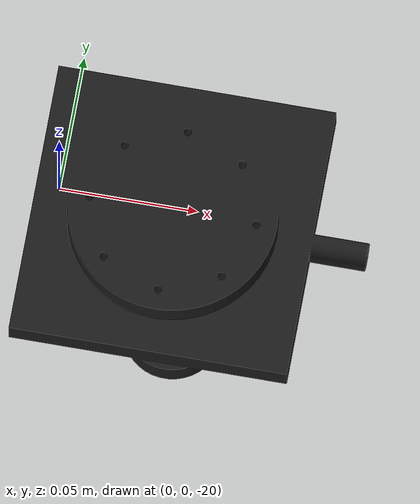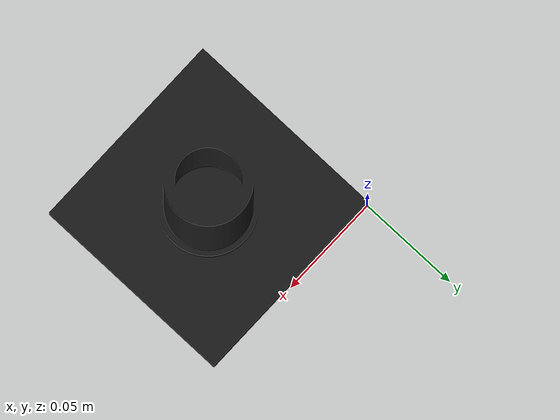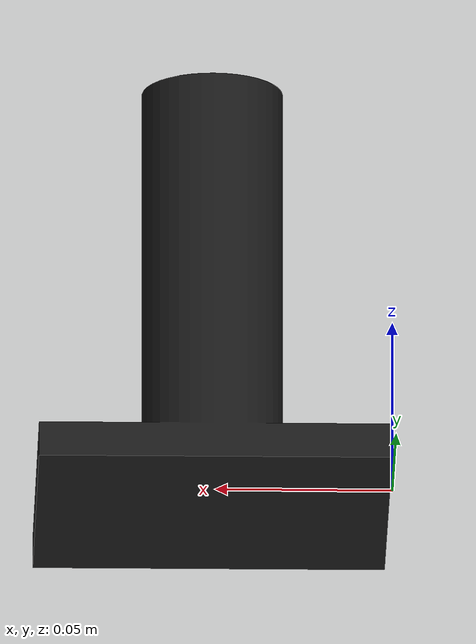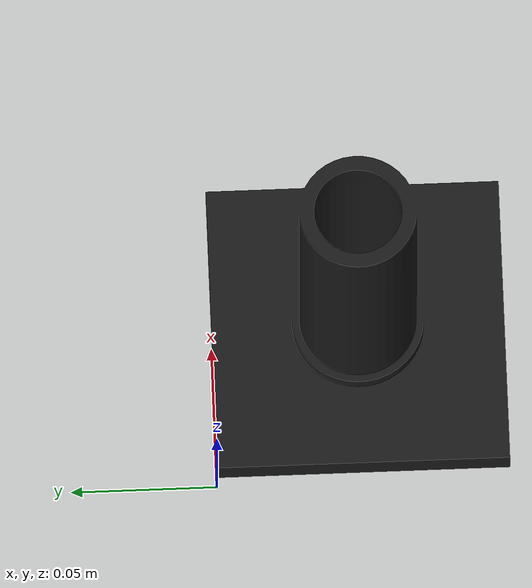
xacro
<?xml version="1.0"?>

<robot xmlns:xacro="http://www.ros.org/wiki/xacro" name="hose_plate">
  <material name="light_black">
    <color rgba="0.1 0.1 0.1 1.0" />
  </material>
  <link name="base_footprint"/>
    <joint name="base_joint" type="fixed">
        <parent link="base_footprint"/>
        <child link="base_link"/>
        <origin rpy="0 0 0" xyz="0 0 0.010"/>
    </joint>
    <link name="base_link">
        <visual>
            <origin rpy="1.57 0 0" xyz="0 0 0"/>
            <geometry>
                <mesh filename="package://week5_model/mesh/hose/Base(E).stl" scale="0.001 0.001 0.001"/>
            </geometry>
            <material name="light_black"/>
        </visual>
        <collision>
            <origin rpy="1.57 0 0" xyz="0 0 0"/>
            <geometry>
                <mesh filename="package://week5_model/mesh/hose/Base(E).stl" scale="0.001 0.001 0.001"/>
            </geometry>
        </collision>
    </link>
    <joint name="top_joint" type="fixed">
        <parent link="base_link"/>
        <child link="top_link"/>
        <origin rpy="0 0 0" xyz="0 0 -20"/>
    </joint>
    <link name="top_link">
        <visual>
            <origin rpy="1.57 0 0" xyz="0 0 0"/>
            <geometry>
                <mesh filename="package://week5_model/mesh/hose/Top(I).stl" scale="0.001 0.001 0.001"/>
            </geometry>
            <material name="light_black"/>
        </visual>
        <collision>
            <origin rpy="1.57 0 0" xyz="0 0 0"/>
            <geometry>
                <mesh filename="package://week5_model/mesh/hose/Top(I).stl" scale="0.001 0.001 0.001"/>
            </geometry>
        </collision>
    </link>
</robot>
